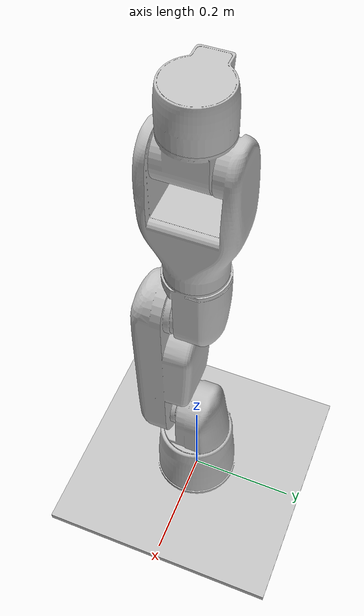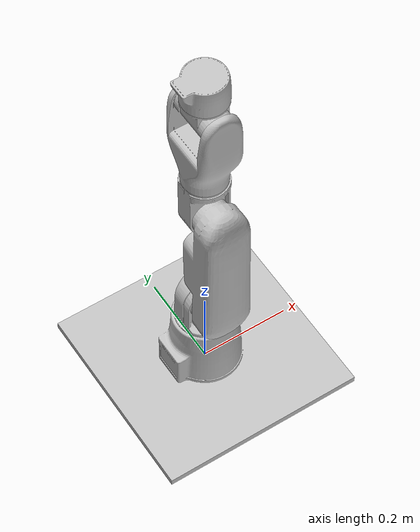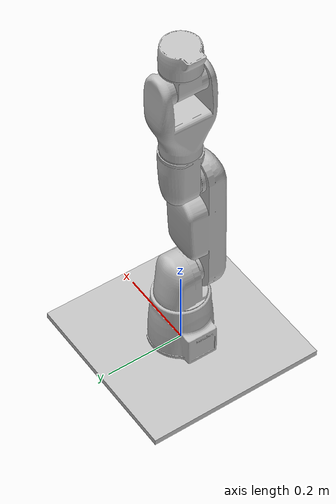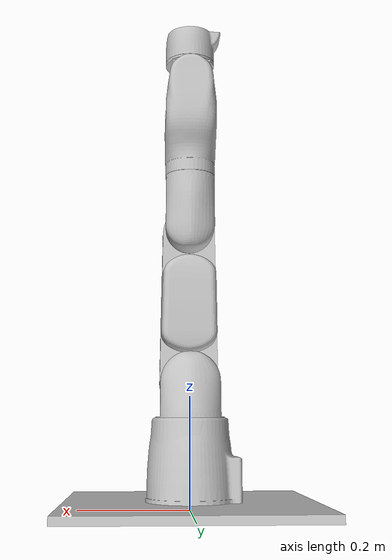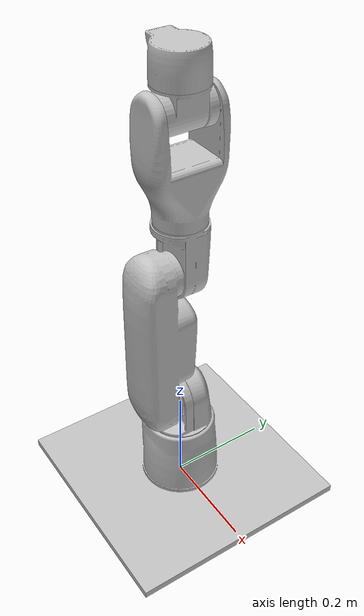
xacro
<?xml version="1.0"?>
<robot xmlns:xacro="http://ros.org/wiki/xacro" name="omni_6" >

  <!-- common stuff -->
  <xacro:include filename="$(find neo_description)/urdf/common.gazebo.xacro" />

  <!-- omni_6 -->
  <xacro:include filename="$(find neo_description)/urdf/omni_6/omni_6.urdf.xacro" />

  <!-- arm -->
  <xacro:omni_6_robot />

  <link name="world" />

  <joint name="world_joint" type="fixed" >
    <parent link="world" />
    <child link="base_link" />
    <origin xyz="0 0 0" rpy="0 0 -1.57" />
  </joint>

</robot>

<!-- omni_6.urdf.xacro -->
<robot xmlns:xacro="http://ros.org/wiki/xacro">

  <xacro:include filename="$(find neo_description)/urdf/omni_6/omni_6.transmission.xacro" />
  <xacro:include filename="$(find neo_description)/urdf/omni_6/omni_6.gazebo.xacro" />

  <xacro:macro name="omni_6_robot" params="
    first_lower_limit:=${-2.0*pi/3.0}     first_upper_limit:=${2.0*pi/3.0}
    second_lower_limit:=${-pi/2.0}        second_upper_limit:=${pi/2.0}
    third_lower_limit:=${-5.0*pi/9.0}     third_upper_limit:=${5.0*pi/9.0}
    fourth_lower_limit:=${-8.5*pi/9.0}    fourth_upper_limit:=${8.5*pi/9.0}
    fifth_lower_limit:=${-5.0*pi/9.0}     fifth_upper_limit:=${5.0*pi/9.0}
    sixth_lower_limit:=${-8.5*pi/9.0}     sixth_upper_limit:=${8.5*pi/9.0}">

  <xacro:macro name="link_material" params="name">
    <material name="${name}">
      <color rgba="0.75294 0.75294 0.75294 1" />
    </material>
  </xacro:macro>

  <xacro:macro name="link_geometry" params="name">
    <geometry>
      <mesh filename="package://neo_description/meshes/omni_6/${name}.stl" />
    </geometry>
  </xacro:macro>

  <xacro:macro name="cylinder_inertial" params="radius length mass">
    <inertial>
      <mass value="${mass}" />
      <origin xyz="0.0 0.0 0.0" rpy="0 0 0" />
      <inertia  ixx="${1.0 / 12 * mass * (3 * radius * radius + length * length)}" ixy="0.0" ixz="0.0"
                iyy="${1.0 / 12 * mass * (3 * radius * radius + length * length)}" iyz="0.0"
                izz="${0.5 * mass * radius * radius}" />
    </inertial>
  </xacro:macro>

    <link name="base_link" >
      <visual>
        <xacro:link_geometry name="base_link" />
        <xacro:link_material name="LightGrey" />
      </visual>
      <collision>
        <xacro:link_geometry name="base_link" />
      </collision>
      <xacro:cylinder_inertial radius="0.0700" length="0.1565" mass="23.943" />
    </link>

    <joint name="first_joint" type="revolute">
      <parent link="base_link" />
      <child link="first_link" />
      <origin xyz="0 0 0.1565" rpy="0 0 0" />
      <axis xyz="0 0 1" />
      <limit lower="${first_lower_limit}" upper="${first_upper_limit}" effort="100.0" velocity="100.0"/>
    </joint>

    <link name="first_link">
      <visual>
        <xacro:link_geometry name="first_link" />
        <xacro:link_material name="LightGrey" />
      </visual>
      <collision>
        <xacro:link_geometry name="first_link" />
      </collision>
      <xacro:cylinder_inertial radius="0.050" length="0.0380" mass="0.77157" />
    </link>

    <joint name="second_joint" type="revolute">
      <parent link="first_link" />
      <child link="second_link" />
      <origin xyz="0.038 0 0.07" rpy="1.57 0 -1.57" />
      <axis xyz="0 0 1" />
      <limit lower="${second_lower_limit}" upper="${second_upper_limit}" effort="100.0" velocity="100.0"/>
    </joint>

    <link name="second_link">
      <visual>
        <xacro:link_geometry name="second_link" />
        <xacro:link_material name="LightGrey" />
      </visual>
      <collision>
        <xacro:link_geometry name="second_link" />
      </collision>
      <xacro:cylinder_inertial radius="0.0500" length="0.29" mass="1.3093" />
    </link>

    <joint name="third_joint" type="revolute">
      <parent link="second_link" />
      <child link="third_link" />
      <origin xyz="0 0.29 0.036" rpy="-3.1416 0 0" />
      <axis xyz="0 0 -1" />
      <limit lower="${third_lower_limit}" upper="${third_upper_limit}" effort="100.0" velocity="100.0"/>
    </joint>

    <link name="third_link">
      <visual>
        <xacro:link_geometry name="third_link" />
        <xacro:link_material name="LightGrey" />
      </visual>
      <collision>
        <xacro:link_geometry name="third_link" />
      </collision>
      <xacro:cylinder_inertial radius="0.0500" length="0.1190" mass="0.53063" />
    </link>

    <joint name="fourth_joint" type="revolute">
      <parent link="third_link" />
      <child link="fourth_link" />
      <origin xyz="0 -0.119 -0.0025" rpy="1.5708 -1.5708 0" />
      <axis xyz="0 0 1" />
      <limit lower="${fourth_lower_limit}" upper="${fourth_upper_limit}" effort="100.0" velocity="100.0"/>
    </joint>

    <link name="fourth_link">
      <visual>
        <xacro:link_geometry name="fourth_link" />
        <xacro:link_material name="LightGrey" />
      </visual>
      <collision>
        <xacro:link_geometry name="fourth_link" />
      </collision>
      <xacro:cylinder_inertial radius="0.0500" length="0.1710" mass="0.826" />
    </link>

    <joint name="fifth_joint" type="revolute">
      <parent link="fourth_link" />
      <child link="fifth_link" />
      <origin xyz="-0.0285 0 0.171" rpy="1.5708 0 -1.5708" />
      <axis xyz="0 0 1" />
      <limit lower="${fifth_lower_limit}" upper="${fifth_upper_limit}" effort="100.0" velocity="100.0"/>
    </joint>

    <link name="fifth_link">
      <visual>
        <xacro:link_geometry name="fifth_link" />
        <xacro:link_material name="LightGrey" />
      </visual>
      <collision>
        <xacro:link_geometry name="fifth_link" />
      </collision>
      <xacro:cylinder_inertial radius="0.0500" length="0.0285" mass="0.26325" />
    </link>

    <joint name="sixth_joint" type="revolute">
      <parent link="fifth_link" />
      <child link="sixth_link" />
      <origin xyz="0 0.0605 -0.0285" rpy="1.5708 1.5708 3.1416" />
      <axis xyz="0 0 1" />
      <limit lower="${sixth_lower_limit}" upper="${sixth_upper_limit}" effort="100.0" velocity="100.0"/>
    </joint>

    <link name="sixth_link">
      <visual>
        <xacro:link_geometry name="sixth_link" />
        <xacro:link_material name="LightGrey" />
      </visual>
      <collision>
        <xacro:link_geometry name="sixth_link" />
      </collision>
      <xacro:cylinder_inertial radius="0.0500" length="0.0605" mass="0.26299" />
    </link>

    <joint name="ee_flange_joint" type="fixed">
      <parent link="sixth_link" />
      <child link="ee_flange_link" />
      <origin xyz="0 0 0.0405" rpy="0 0 1.57" />
    </joint>

    <link name="ee_flange_link">
      <collision>
        <geometry>
          <box size="0.001 0.001 0.001"/>
        </geometry>
        <origin rpy="0 0 0" xyz="0 0 0"/>
      </collision>
    </link>

    <xacro:omni_6_transmission />
    <xacro:omni_6_gazebo />

  </xacro:macro>
</robot>
